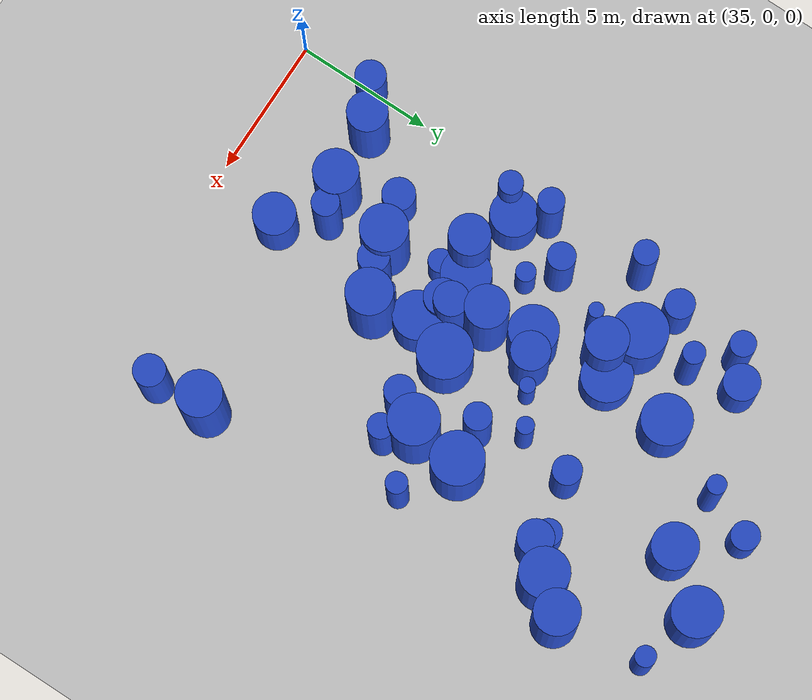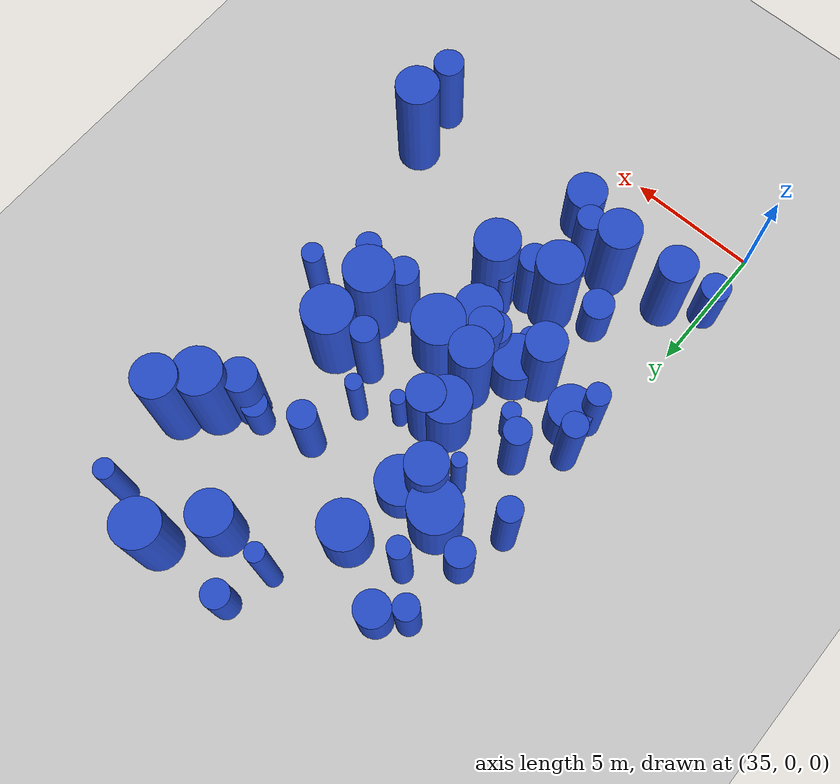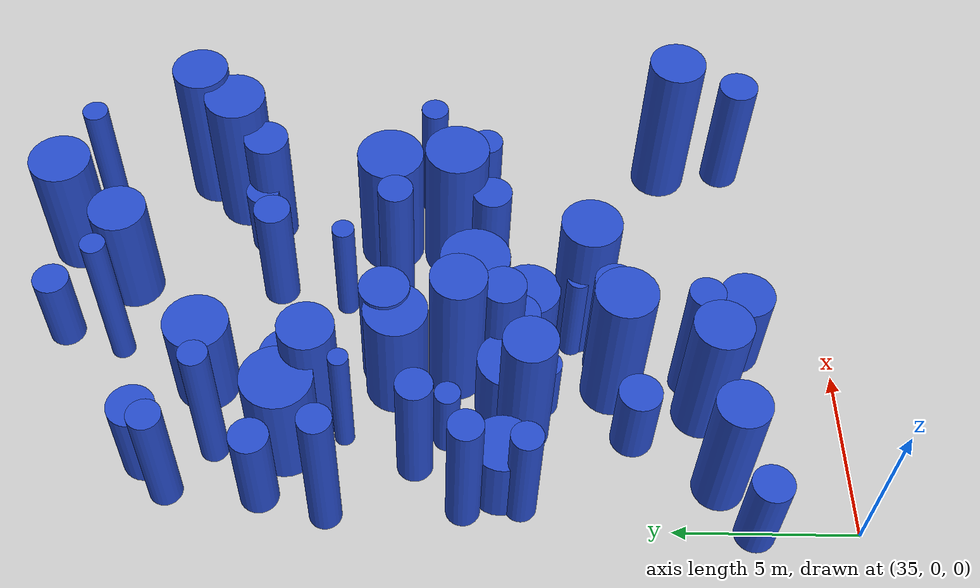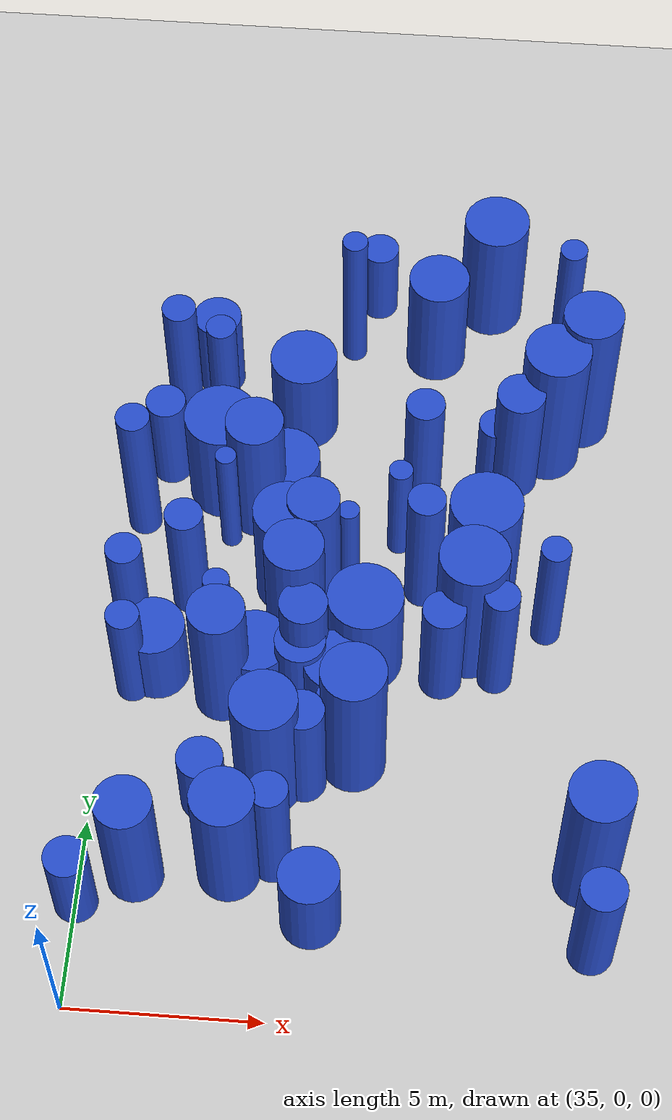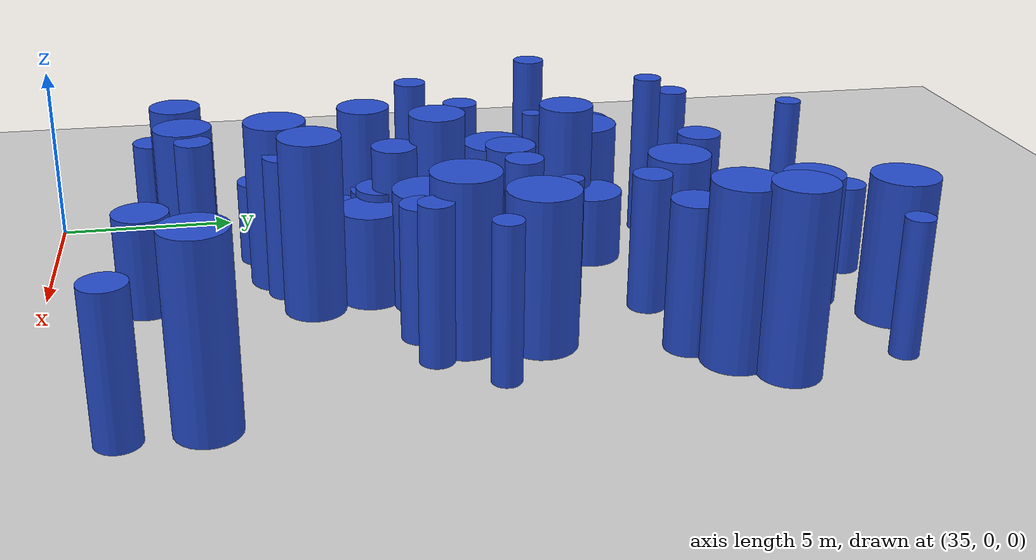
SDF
<sdf version="1.6">
 <world name="default">
  <model name="ground_plane">
   <static>1</static>
   <link name="link">
    <collision name="collision">
     <geometry><plane><normal>0 0 1</normal><size>100 100</size></plane></geometry>
     <surface><friction><ode><mu>100</mu><mu2>50</mu2></ode></friction></surface>
    </collision>
    <visual name="visual">
     <cast_shadows>0</cast_shadows>
     <geometry><plane><normal>0 0 1</normal><size>100 100</size></plane></geometry>
     <material>
      <script><uri>file://media/materials/scripts/gazebo.material</uri><name>Gazebo/Grey</name></script>
     </material>
    </visual>
   </link>
  </model>
  <model name="1">
   <static>0</static>
   <link name="link">
    <inertial>
     <mass>2</mass>
     <inertia><ixx>3.81588</ixx><ixy>0</ixy><ixz>0</ixz><iyy>3.81588</iyy><iyz>0</iyz><izz>0.158534</izz></inertia>
    </inertial>
    <collision name="collision">
     <geometry><cylinder><length>4.73494</length><radius>0.398164</radius></cylinder></geometry>
     <surface><contact><collide_without_contact>1</collide_without_contact></contact></surface>
    </collision>
    <visual name="visual">
     <geometry><cylinder><length>4.73494</length><radius>0.398164</radius></cylinder></geometry>
     <material>
      <script><uri>file://media/materials/scripts/gazebo.material</uri><name>Gazebo/Blue</name></script>
     </material>
    </visual>
    <gravity>0</gravity>
   </link>
   <pose>37.3386 17.4202 2.36747 0 -0 0</pose>
  </model>
  <model name="5">
   <static>0</static>
   <link name="link">
    <inertial>
     <mass>2</mass>
     <inertia><ixx>0.79305</ixx><ixy>0</ixy><ixz>0</ixz><iyy>0.79305</iyy><iyz>0</iyz><izz>0.186767</izz></inertia>
    </inertial>
    <collision name="collision">
     <geometry><cylinder><length>2.0489</length><radius>0.432165</radius></cylinder></geometry>
     <surface><contact><collide_without_contact>1</collide_without_contact></contact></surface>
    </collision>
    <visual name="visual">
     <geometry><cylinder><length>2.0489</length><radius>0.432165</radius></cylinder></geometry>
     <material>
      <script><uri>file://media/materials/scripts/gazebo.material</uri><name>Gazebo/Blue</name></script>
     </material>
    </visual>
    <gravity>0</gravity>
   </link>
   <pose>38.9921 8.31265 1.02445 0 -0 0</pose>
  </model>
  <model name="9">
   <static>0</static>
   <link name="link">
    <inertial>
     <mass>2</mass>
     <inertia><ixx>2.49906</ixx><ixy>0</ixy><ixz>0</ixz><iyy>2.49906</iyy><iyz>0</iyz><izz>0.95958</izz></inertia>
    </inertial>
    <collision name="collision">
     <geometry><cylinder><length>3.48075</length><radius>0.979581</radius></cylinder></geometry>
     <surface><contact><collide_without_contact>1</collide_without_contact></contact></surface>
    </collision>
    <visual name="visual">
     <geometry><cylinder><length>3.48075</length><radius>0.979581</radius></cylinder></geometry>
     <material>
      <script><uri>file://media/materials/scripts/gazebo.material</uri><name>Gazebo/Blue</name></script>
     </material>
    </visual>
    <gravity>0</gravity>
   </link>
   <pose>37.4825 15.4558 1.74037 0 -0 0</pose>
  </model>
  <model name="10">
   <static>0</static>
   <link name="link">
    <inertial>
     <mass>2</mass>
     <inertia><ixx>2.47867</ixx><ixy>0</ixy><ixz>0</ixz><iyy>2.47867</iyy><iyz>0</iyz><izz>0.684649</izz></inertia>
    </inertial>
    <collision name="collision">
     <geometry><cylinder><length>3.58024</length><radius>0.827435</radius></cylinder></geometry>
     <surface><contact><collide_without_contact>1</collide_without_contact></contact></surface>
    </collision>
    <visual name="visual">
     <geometry><cylinder><length>3.58024</length><radius>0.827435</radius></cylinder></geometry>
     <material>
      <script><uri>file://media/materials/scripts/gazebo.material</uri><name>Gazebo/Blue</name></script>
     </material>
    </visual>
    <gravity>0</gravity>
   </link>
   <pose>43.0104 20.4105 1.79012 0 -0 0</pose>
  </model>
  <model name="16">
   <static>0</static>
   <link name="link">
    <inertial>
     <mass>2</mass>
     <inertia><ixx>1.52106</ixx><ixy>0</ixy><ixz>0</ixz><iyy>1.52106</iyy><iyz>0</iyz><izz>0.42879</izz></inertia>
    </inertial>
    <collision name="collision">
     <geometry><cylinder><length>2.8</length><radius>0.65482</radius></cylinder></geometry>
     <surface><contact><collide_without_contact>1</collide_without_contact></contact></surface>
    </collision>
    <visual name="visual">
     <geometry><cylinder><length>2.8</length><radius>0.65482</radius></cylinder></geometry>
     <material>
      <script><uri>file://media/materials/scripts/gazebo.material</uri><name>Gazebo/Blue</name></script>
     </material>
    </visual>
    <gravity>0</gravity>
   </link>
   <pose>36.9714 19.2595 1.4 0 -0 0</pose>
  </model>
  <model name="21">
   <static>0</static>
   <link name="link">
    <inertial>
     <mass>2</mass>
     <inertia><ixx>3.48031</ixx><ixy>0</ixy><ixz>0</ixz><iyy>3.48031</iyy><iyz>0</iyz><izz>0.247758</izz></inertia>
    </inertial>
    <collision name="collision">
     <geometry><cylinder><length>4.4876</length><radius>0.497753</radius></cylinder></geometry>
     <surface><contact><collide_without_contact>1</collide_without_contact></contact></surface>
    </collision>
    <visual name="visual">
     <geometry><cylinder><length>4.4876</length><radius>0.497753</radius></cylinder></geometry>
     <material>
      <script><uri>file://media/materials/scripts/gazebo.material</uri><name>Gazebo/Blue</name></script>
     </material>
    </visual>
    <gravity>0</gravity>
   </link>
   <pose>43.0951 12.5325 2.2438 0 -0 0</pose>
  </model>
  <model name="23">
   <static>0</static>
   <link name="link">
    <inertial>
     <mass>2</mass>
     <inertia><ixx>3.02897</ixx><ixy>0</ixy><ixz>0</ixz><iyy>3.02897</iyy><iyz>0</iyz><izz>0.799249</izz></inertia>
    </inertial>
    <collision name="collision">
     <geometry><cylinder><length>3.97191</length><radius>0.894007</radius></cylinder></geometry>
     <surface><contact><collide_without_contact>1</collide_without_contact></contact></surface>
    </collision>
    <visual name="visual">
     <geometry><cylinder><length>3.97191</length><radius>0.894007</radius></cylinder></geometry>
     <material>
      <script><uri>file://media/materials/scripts/gazebo.material</uri><name>Gazebo/Blue</name></script>
     </material>
    </visual>
    <gravity>0</gravity>
   </link>
   <pose>44.5026 22.2198 1.98596 0 -0 0</pose>
  </model>
  <model name="29">
   <static>0</static>
   <link name="link">
    <inertial>
     <mass>2</mass>
     <inertia><ixx>2.40213</ixx><ixy>0</ixy><ixz>0</ixz><iyy>2.40213</iyy><iyz>0</iyz><izz>0.316267</izz></inertia>
    </inertial>
    <collision name="collision">
     <geometry><cylinder><length>3.66933</length><radius>0.562376</radius></cylinder></geometry>
     <surface><contact><collide_without_contact>1</collide_without_contact></contact></surface>
    </collision>
    <visual name="visual">
     <geometry><cylinder><length>3.66933</length><radius>0.562376</radius></cylinder></geometry>
     <material>
      <script><uri>file://media/materials/scripts/gazebo.material</uri><name>Gazebo/Blue</name></script>
     </material>
    </visual>
    <gravity>0</gravity>
   </link>
   <pose>43.713 9.80193 1.83467 0 -0 0</pose>
  </model>
  <model name="33">
   <static>0</static>
   <link name="link">
    <inertial>
     <mass>2</mass>
     <inertia><ixx>2.44196</ixx><ixy>0</ixy><ixz>0</ixz><iyy>2.44196</iyy><iyz>0</iyz><izz>0.187757</izz></inertia>
    </inertial>
    <collision name="collision">
     <geometry><cylinder><length>3.75347</length><radius>0.43331</radius></cylinder></geometry>
     <surface><contact><collide_without_contact>1</collide_without_contact></contact></surface>
    </collision>
    <visual name="visual">
     <geometry><cylinder><length>3.75347</length><radius>0.43331</radius></cylinder></geometry>
     <material>
      <script><uri>file://media/materials/scripts/gazebo.material</uri><name>Gazebo/Blue</name></script>
     </material>
    </visual>
    <gravity>0</gravity>
   </link>
   <pose>35.6788 9.00993 1.87673 0 -0 0</pose>
  </model>
  <model name="34">
   <static>0</static>
   <link name="link">
    <inertial>
     <mass>2</mass>
     <inertia><ixx>1.29833</ixx><ixy>0</ixy><ixz>0</ixz><iyy>1.29833</iyy><iyz>0</iyz><izz>0.714199</izz></inertia>
    </inertial>
    <collision name="collision">
     <geometry><cylinder><length>2.37642</length><radius>0.845103</radius></cylinder></geometry>
     <surface><contact><collide_without_contact>1</collide_without_contact></contact></surface>
    </collision>
    <visual name="visual">
     <geometry><cylinder><length>2.37642</length><radius>0.845103</radius></cylinder></geometry>
     <material>
      <script><uri>file://media/materials/scripts/gazebo.material</uri><name>Gazebo/Blue</name></script>
     </material>
    </visual>
    <gravity>0</gravity>
   </link>
   <pose>36.2733 9.54869 1.18821 0 -0 0</pose>
  </model>
  <model name="48">
   <static>0</static>
   <link name="link">
    <inertial>
     <mass>2</mass>
     <inertia><ixx>3.26153</ixx><ixy>0</ixy><ixz>0</ixz><iyy>3.26153</iyy><iyz>0</iyz><izz>0.520826</izz></inertia>
    </inertial>
    <collision name="collision">
     <geometry><cylinder><length>4.24343</length><radius>0.721682</radius></cylinder></geometry>
     <surface><contact><collide_without_contact>1</collide_without_contact></contact></surface>
    </collision>
    <visual name="visual">
     <geometry><cylinder><length>4.24343</length><radius>0.721682</radius></cylinder></geometry>
     <material>
      <script><uri>file://media/materials/scripts/gazebo.material</uri><name>Gazebo/Blue</name></script>
     </material>
    </visual>
    <gravity>0</gravity>
   </link>
   <pose>36.3989 3.62936 2.12171 0 -0 0</pose>
  </model>
  <model name="51">
   <static>0</static>
   <link name="link">
    <inertial>
     <mass>2</mass>
     <inertia><ixx>2.86155</ixx><ixy>0</ixy><ixz>0</ixz><iyy>2.86155</iyy><iyz>0</iyz><izz>0.388059</izz></inertia>
    </inertial>
    <collision name="collision">
     <geometry><cylinder><length>4.00064</length><radius>0.622944</radius></cylinder></geometry>
     <surface><contact><collide_without_contact>1</collide_without_contact></contact></surface>
    </collision>
    <visual name="visual">
     <geometry><cylinder><length>4.00064</length><radius>0.622944</radius></cylinder></geometry>
     <material>
      <script><uri>file://media/materials/scripts/gazebo.material</uri><name>Gazebo/Blue</name></script>
     </material>
    </visual>
    <gravity>0</gravity>
   </link>
   <pose>40.1805 9.54253 2.00032 0 -0 0</pose>
  </model>
  <model name="66">
   <static>0</static>
   <link name="link">
    <inertial>
     <mass>2</mass>
     <inertia>
      <ixx>2.20663</ixx>
      <ixy>0</ixy>
      <ixz>0</ixz>
      <iyy>2.20663</iyy>
      <iyz>0</iyz>
      <izz>0.0996871</izz>
     </inertia>
    </inertial>
    <collision name="collision">
     <geometry><cylinder><length>3.59732</length><radius>0.315733</radius></cylinder></geometry>
     <surface><contact><collide_without_contact>1</collide_without_contact></contact></surface>
    </collision>
    <visual name="visual">
     <geometry><cylinder><length>3.59732</length><radius>0.315733</radius></cylinder></geometry>
     <material>
      <script><uri>file://media/materials/scripts/gazebo.material</uri><name>Gazebo/Blue</name></script>
     </material>
    </visual>
    <gravity>0</gravity>
   </link>
   <pose>42.3597 13.9829 1.79866 0 -0 0</pose>
  </model>
  <model name="101">
   <static>0</static>
   <link name="link">
    <inertial>
     <mass>2</mass>
     <inertia><ixx>2.52382</ixx><ixy>0</ixy><ixz>0</ixz><iyy>2.52382</iyy><iyz>0</iyz><izz>0.271897</izz></inertia>
    </inertial>
    <collision name="collision">
     <geometry><cylinder><length>3.78514</length><radius>0.521438</radius></cylinder></geometry>
     <surface><contact><collide_without_contact>1</collide_without_contact></contact></surface>
    </collision>
    <visual name="visual">
     <geometry><cylinder><length>3.78514</length><radius>0.521438</radius></cylinder></geometry>
     <material>
      <script><uri>file://media/materials/scripts/gazebo.material</uri><name>Gazebo/Blue</name></script>
     </material>
    </visual>
    <gravity>0</gravity>
   </link>
   <pose>42.8813 15.9971 1.89257 0 -0 0</pose>
  </model>
  <model name="103">
   <static>0</static>
   <link name="link">
    <inertial>
     <mass>2</mass>
     <inertia><ixx>2.72213</ixx><ixy>0</ixy><ixz>0</ixz><iyy>2.72213</iyy><iyz>0</iyz><izz>0.486014</izz></inertia>
    </inertial>
    <collision name="collision">
     <geometry><cylinder><length>3.85678</length><radius>0.697147</radius></cylinder></geometry>
     <surface><contact><collide_without_contact>1</collide_without_contact></contact></surface>
    </collision>
    <visual name="visual">
     <geometry><cylinder><length>3.85678</length><radius>0.697147</radius></cylinder></geometry>
     <material>
      <script><uri>file://media/materials/scripts/gazebo.material</uri><name>Gazebo/Blue</name></script>
     </material>
    </visual>
    <gravity>0</gravity>
   </link>
   <pose>40.1712 12.7482 1.92839 0 -0 0</pose>
  </model>
  <model name="106">
   <static>0</static>
   <link name="link">
    <inertial>
     <mass>2</mass>
     <inertia><ixx>1.98531</ixx><ixy>0</ixy><ixz>0</ixz><iyy>1.98531</iyy><iyz>0</iyz><izz>0.825751</izz></inertia>
    </inertial>
    <collision name="collision">
     <geometry><cylinder><length>3.07158</length><radius>0.908708</radius></cylinder></geometry>
     <surface><contact><collide_without_contact>1</collide_without_contact></contact></surface>
    </collision>
    <visual name="visual">
     <geometry><cylinder><length>3.07158</length><radius>0.908708</radius></cylinder></geometry>
     <material>
      <script><uri>file://media/materials/scripts/gazebo.material</uri><name>Gazebo/Blue</name></script>
     </material>
    </visual>
    <gravity>0</gravity>
   </link>
   <pose>39.4858 17.8355 1.53579 0 -0 0</pose>
  </model>
  <model name="107">
   <static>0</static>
   <link name="link">
    <inertial>
     <mass>2</mass>
     <inertia><ixx>2.6751</ixx><ixy>0</ixy><ixz>0</ixz><iyy>2.6751</iyy><iyz>0</iyz><izz>0.0768651</izz></inertia>
    </inertial>
    <collision name="collision">
     <geometry><cylinder><length>3.97744</length><radius>0.277246</radius></cylinder></geometry>
     <surface><contact><collide_without_contact>1</collide_without_contact></contact></surface>
    </collision>
    <visual name="visual">
     <geometry><cylinder><length>3.97744</length><radius>0.277246</radius></cylinder></geometry>
     <material>
      <script><uri>file://media/materials/scripts/gazebo.material</uri><name>Gazebo/Blue</name></script>
     </material>
    </visual>
    <gravity>0</gravity>
   </link>
   <pose>37.7998 13.8436 1.98872 0 -0 0</pose>
  </model>
  <model name="113">
   <static>0</static>
   <link name="link">
    <inertial>
     <mass>2</mass>
     <inertia><ixx>1.78792</ixx><ixy>0</ixy><ixz>0</ixz><iyy>1.78792</iyy><iyz>0</iyz><izz>0.287967</izz></inertia>
    </inertial>
    <collision name="collision">
     <geometry><cylinder><length>3.14064</length><radius>0.536625</radius></cylinder></geometry>
     <surface><contact><collide_without_contact>1</collide_without_contact></contact></surface>
    </collision>
    <visual name="visual">
     <geometry><cylinder><length>3.14064</length><radius>0.536625</radius></cylinder></geometry>
     <material>
      <script><uri>file://media/materials/scripts/gazebo.material</uri><name>Gazebo/Blue</name></script>
     </material>
    </visual>
    <gravity>0</gravity>
   </link>
   <pose>35.9208 16.0488 1.57032 0 -0 0</pose>
  </model>
  <model name="127">
   <static>0</static>
   <link name="link">
    <inertial>
     <mass>2</mass>
     <inertia><ixx>3.41432</ixx><ixy>0</ixy><ixz>0</ixz><iyy>3.41432</iyy><iyz>0</iyz><izz>0.901291</izz></inertia>
    </inertial>
    <collision name="collision">
     <geometry><cylinder><length>4.21688</length><radius>0.949363</radius></cylinder></geometry>
     <surface><contact><collide_without_contact>1</collide_without_contact></contact></surface>
    </collision>
    <visual name="visual">
     <geometry><cylinder><length>4.21688</length><radius>0.949363</radius></cylinder></geometry>
     <material>
      <script><uri>file://media/materials/scripts/gazebo.material</uri><name>Gazebo/Blue</name></script>
     </material>
    </visual>
    <gravity>0</gravity>
   </link>
   <pose>44.6225 12.7235 2.10844 0 -0 0</pose>
  </model>
  <model name="140">
   <static>0</static>
   <link name="link">
    <inertial>
     <mass>2</mass>
     <inertia><ixx>1.40632</ixx><ixy>0</ixy><ixz>0</ixz><iyy>1.40632</iyy><iyz>0</iyz><izz>0.308108</izz></inertia>
    </inertial>
    <collision name="collision">
     <geometry><cylinder><length>2.7411</length><radius>0.555075</radius></cylinder></geometry>
     <surface><contact><collide_without_contact>1</collide_without_contact></contact></surface>
    </collision>
    <visual name="visual">
     <geometry><cylinder><length>2.7411</length><radius>0.555075</radius></cylinder></geometry>
     <material>
      <script><uri>file://media/materials/scripts/gazebo.material</uri><name>Gazebo/Blue</name></script>
     </material>
    </visual>
    <gravity>0</gravity>
   </link>
   <pose>35.0094 2.803 1.37055 0 -0 0</pose>
  </model>
  <model name="186">
   <static>0</static>
   <link name="link">
    <inertial>
     <mass>2</mass>
     <inertia><ixx>2.93958</ixx><ixy>0</ixy><ixz>0</ixz><iyy>2.93958</iyy><iyz>0</iyz><izz>0.249669</izz></inertia>
    </inertial>
    <collision name="collision">
     <geometry><cylinder><length>4.10956</length><radius>0.499669</radius></cylinder></geometry>
     <surface><contact><collide_without_contact>1</collide_without_contact></contact></surface>
    </collision>
    <visual name="visual">
     <geometry><cylinder><length>4.10956</length><radius>0.499669</radius></cylinder></geometry>
     <material>
      <script><uri>file://media/materials/scripts/gazebo.material</uri><name>Gazebo/Blue</name></script>
     </material>
    </visual>
    <gravity>0</gravity>
   </link>
   <pose>36.9236 11.8681 2.05478 0 -0 0</pose>
  </model>
  <model name="187">
   <static>0</static>
   <link name="link">
    <inertial>
     <mass>2</mass>
     <inertia><ixx>1.57366</ixx><ixy>0</ixy><ixz>0</ixz><iyy>1.57366</iyy><iyz>0</iyz><izz>0.581682</izz></inertia>
    </inertial>
    <collision name="collision">
     <geometry><cylinder><length>2.77433</length><radius>0.76268</radius></cylinder></geometry>
     <surface><contact><collide_without_contact>1</collide_without_contact></contact></surface>
    </collision>
    <visual name="visual">
     <geometry><cylinder><length>2.77433</length><radius>0.76268</radius></cylinder></geometry>
     <material>
      <script><uri>file://media/materials/scripts/gazebo.material</uri><name>Gazebo/Blue</name></script>
     </material>
    </visual>
    <gravity>0</gravity>
   </link>
   <pose>40.8757 2.74416 1.38717 0 -0 0</pose>
  </model>
  <model name="202">
   <static>0</static>
   <link name="link">
    <inertial>
     <mass>2</mass>
     <inertia><ixx>3.10138</ixx><ixy>0</ixy><ixz>0</ixz><iyy>3.10138</iyy><iyz>0</iyz><izz>0.209682</izz></inertia>
    </inertial>
    <collision name="collision">
     <geometry><cylinder><length>4.24019</length><radius>0.45791</radius></cylinder></geometry>
     <surface><contact><collide_without_contact>1</collide_without_contact></contact></surface>
    </collision>
    <visual name="visual">
     <geometry><cylinder><length>4.24019</length><radius>0.45791</radius></cylinder></geometry>
     <material>
      <script><uri>file://media/materials/scripts/gazebo.material</uri><name>Gazebo/Blue</name></script>
     </material>
    </visual>
    <gravity>0</gravity>
   </link>
   <pose>45.1348 9.97183 2.1201 0 -0 0</pose>
  </model>
  <model name="208">
   <static>0</static>
   <link name="link">
    <inertial>
     <mass>2</mass>
     <inertia><ixx>2.88239</ixx><ixy>0</ixy><ixz>0</ixz><iyy>2.88239</iyy><iyz>0</iyz><izz>0.418174</izz></inertia>
    </inertial>
    <collision name="collision">
     <geometry><cylinder><length>4.00498</length><radius>0.646664</radius></cylinder></geometry>
     <surface><contact><collide_without_contact>1</collide_without_contact></contact></surface>
    </collision>
    <visual name="visual">
     <geometry><cylinder><length>4.00498</length><radius>0.646664</radius></cylinder></geometry>
     <material>
      <script><uri>file://media/materials/scripts/gazebo.material</uri><name>Gazebo/Blue</name></script>
     </material>
    </visual>
    <gravity>0</gravity>
   </link>
   <pose>45.3882 16.3678 2.00249 0 -0 0</pose>
  </model>
  <model name="212">
   <static>0</static>
   <link name="link">
    <inertial>
     <mass>2</mass>
     <inertia><ixx>1.12089</ixx><ixy>0</ixy><ixz>0</ixz><iyy>1.12089</iyy><iyz>0</iyz><izz>0.355767</izz></inertia>
    </inertial>
    <collision name="collision">
     <geometry><cylinder><length>2.37867</length><radius>0.596462</radius></cylinder></geometry>
     <surface><contact><collide_without_contact>1</collide_without_contact></contact></surface>
    </collision>
    <visual name="visual">
     <geometry><cylinder><length>2.37867</length><radius>0.596462</radius></cylinder></geometry>
     <material>
      <script><uri>file://media/materials/scripts/gazebo.material</uri><name>Gazebo/Blue</name></script>
     </material>
    </visual>
    <gravity>0</gravity>
   </link>
   <pose>37.8915 5.87249 1.18933 0 -0 0</pose>
  </model>
  <model name="223">
   <static>0</static>
   <link name="link">
    <inertial>
     <mass>2</mass>
     <inertia><ixx>1.03772</ixx><ixy>0</ixy><ixz>0</ixz><iyy>1.03772</iyy><iyz>0</iyz><izz>0.128133</izz></inertia>
    </inertial>
    <collision name="collision">
     <geometry><cylinder><length>2.417</length><radius>0.357956</radius></cylinder></geometry>
     <surface><contact><collide_without_contact>1</collide_without_contact></contact></surface>
    </collision>
    <visual name="visual">
     <geometry><cylinder><length>2.417</length><radius>0.357956</radius></cylinder></geometry>
     <material>
      <script><uri>file://media/materials/scripts/gazebo.material</uri><name>Gazebo/Blue</name></script>
     </material>
    </visual>
    <gravity>0</gravity>
   </link>
   <pose>37.7609 11.0113 1.2085 0 -0 0</pose>
  </model>
  <model name="243">
   <static>0</static>
   <link name="link">
    <inertial>
     <mass>2</mass>
     <inertia><ixx>1.10068</ixx><ixy>0</ixy><ixz>0</ixz><iyy>1.10068</iyy><iyz>0</iyz><izz>0.856696</izz></inertia>
    </inertial>
    <collision name="collision">
     <geometry><cylinder><length>2.00848</length><radius>0.925579</radius></cylinder></geometry>
     <surface><contact><collide_without_contact>1</collide_without_contact></contact></surface>
    </collision>
    <visual name="visual">
     <geometry><cylinder><length>2.00848</length><radius>0.925579</radius></cylinder></geometry>
     <material>
      <script><uri>file://media/materials/scripts/gazebo.material</uri><name>Gazebo/Blue</name></script>
     </material>
    </visual>
    <gravity>0</gravity>
   </link>
   <pose>39.1964 15.2826 1.00424 0 -0 0</pose>
  </model>
  <model name="245">
   <static>0</static>
   <link name="link">
    <inertial>
     <mass>2</mass>
     <inertia><ixx>4.31321</ixx><ixy>0</ixy><ixz>0</ixz><iyy>4.31321</iyy><iyz>0</iyz><izz>0.691048</izz></inertia>
    </inertial>
    <collision name="collision">
     <geometry><cylinder><length>4.87915</length><radius>0.831293</radius></cylinder></geometry>
     <surface><contact><collide_without_contact>1</collide_without_contact></contact></surface>
    </collision>
    <visual name="visual">
     <geometry><cylinder><length>4.87915</length><radius>0.831293</radius></cylinder></geometry>
     <material>
      <script><uri>file://media/materials/scripts/gazebo.material</uri><name>Gazebo/Blue</name></script>
     </material>
    </visual>
    <gravity>0</gravity>
   </link>
   <pose>41.6182 7.19636 2.43957 0 -0 0</pose>
  </model>
  <model name="254">
   <static>0</static>
   <link name="link">
    <inertial>
     <mass>2</mass>
     <inertia>
      <ixx>1.57214</ixx>
      <ixy>0</ixy>
      <ixz>0</ixz>
      <iyy>1.57214</iyy>
      <iyz>0</iyz>
      <izz>0.0828574</izz>
     </inertia>
    </inertial>
    <collision name="collision">
     <geometry><cylinder><length>3.03056</length><radius>0.28785</radius></cylinder></geometry>
     <surface><contact><collide_without_contact>1</collide_without_contact></contact></surface>
    </collision>
    <visual name="visual">
     <geometry><cylinder><length>3.03056</length><radius>0.28785</radius></cylinder></geometry>
     <material>
      <script><uri>file://media/materials/scripts/gazebo.material</uri><name>Gazebo/Blue</name></script>
     </material>
    </visual>
    <gravity>0</gravity>
   </link>
   <pose>39.2303 6.33871 1.51528 0 -0 0</pose>
  </model>
  <model name="256">
   <static>0</static>
   <link name="link">
    <inertial>
     <mass>2</mass>
     <inertia><ixx>1.21052</ixx><ixy>0</ixy><ixz>0</ixz><iyy>1.21052</iyy><iyz>0</iyz><izz>0.269813</izz></inertia>
    </inertial>
    <collision name="collision">
     <geometry><cylinder><length>2.54041</length><radius>0.519435</radius></cylinder></geometry>
     <surface><contact><collide_without_contact>1</collide_without_contact></contact></surface>
    </collision>
    <visual name="visual">
     <geometry><cylinder><length>2.54041</length><radius>0.519435</radius></cylinder></geometry>
     <material>
      <script><uri>file://media/materials/scripts/gazebo.material</uri><name>Gazebo/Blue</name></script>
     </material>
    </visual>
    <gravity>0</gravity>
   </link>
   <pose>41.2741 22.1936 1.2702 0 -0 0</pose>
  </model>
  <model name="259">
   <static>0</static>
   <link name="link">
    <inertial>
     <mass>2</mass>
     <inertia><ixx>1.30967</ixx><ixy>0</ixy><ixz>0</ixz><iyy>1.30967</iyy><iyz>0</iyz><izz>0.813274</izz></inertia>
    </inertial>
    <collision name="collision">
     <geometry><cylinder><length>2.3277</length><radius>0.901817</radius></cylinder></geometry>
     <surface><contact><collide_without_contact>1</collide_without_contact></contact></surface>
    </collision>
    <visual name="visual">
     <geometry><cylinder><length>2.3277</length><radius>0.901817</radius></cylinder></geometry>
     <material>
      <script><uri>file://media/materials/scripts/gazebo.material</uri><name>Gazebo/Blue</name></script>
     </material>
    </visual>
    <gravity>0</gravity>
   </link>
   <pose>38.9198 9.32892 1.16385 0 -0 0</pose>
  </model>
  <model name="269">
   <static>0</static>
   <link name="link">
    <inertial>
     <mass>2</mass>
     <inertia><ixx>4.09694</ixx><ixy>0</ixy><ixz>0</ixz><iyy>4.09694</iyy><iyz>0</iyz><izz>0.822111</izz></inertia>
    </inertial>
    <collision name="collision">
     <geometry><cylinder><length>4.70269</length><radius>0.906703</radius></cylinder></geometry>
     <surface><contact><collide_without_contact>1</collide_without_contact></contact></surface>
    </collision>
    <visual name="visual">
     <geometry><cylinder><length>4.70269</length><radius>0.906703</radius></cylinder></geometry>
     <material>
      <script><uri>file://media/materials/scripts/gazebo.material</uri><name>Gazebo/Blue</name></script>
     </material>
    </visual>
    <gravity>0</gravity>
   </link>
   <pose>44.3846 10.8215 2.35134 0 -0 0</pose>
  </model>
  <model name="275">
   <static>0</static>
   <link name="link">
    <inertial>
     <mass>2</mass>
     <inertia><ixx>2.71759</ixx><ixy>0</ixy><ixz>0</ixz><iyy>2.71759</iyy><iyz>0</iyz><izz>0.330228</izz></inertia>
    </inertial>
    <collision name="collision">
     <geometry><cylinder><length>3.91342</length><radius>0.574655</radius></cylinder></geometry>
     <surface><contact><collide_without_contact>1</collide_without_contact></contact></surface>
    </collision>
    <visual name="visual">
     <geometry><cylinder><length>3.91342</length><radius>0.574655</radius></cylinder></geometry>
     <material>
      <script><uri>file://media/materials/scripts/gazebo.material</uri><name>Gazebo/Blue</name></script>
     </material>
    </visual>
    <gravity>0</gravity>
   </link>
   <pose>47.8179 2.39416 1.95671 0 -0 0</pose>
  </model>
  <model name="277">
   <static>0</static>
   <link name="link">
    <inertial>
     <mass>2</mass>
     <inertia><ixx>3.34082</ixx><ixy>0</ixy><ixz>0</ixz><iyy>3.34082</iyy><iyz>0</iyz><izz>0.219298</izz></inertia>
    </inertial>
    <collision name="collision">
     <geometry><cylinder><length>4.40307</length><radius>0.468293</radius></cylinder></geometry>
     <surface><contact><collide_without_contact>1</collide_without_contact></contact></surface>
    </collision>
    <visual name="visual">
     <geometry><cylinder><length>4.40307</length><radius>0.468293</radius></cylinder></geometry>
     <material>
      <script><uri>file://media/materials/scripts/gazebo.material</uri><name>Gazebo/Blue</name></script>
     </material>
    </visual>
    <gravity>0</gravity>
   </link>
   <pose>35.5663 10.5573 2.20154 0 -0 0</pose>
  </model>
  <model name="281">
   <static>0</static>
   <link name="link">
    <inertial>
     <mass>2</mass>
     <inertia><ixx>1.55093</ixx><ixy>0</ixy><ixz>0</ixz><iyy>1.55093</iyy><iyz>0</iyz><izz>0.436646</izz></inertia>
    </inertial>
    <collision name="collision">
     <geometry><cylinder><length>2.82765</length><radius>0.660792</radius></cylinder></geometry>
     <surface><contact><collide_without_contact>1</collide_without_contact></contact></surface>
    </collision>
    <visual name="visual">
     <geometry><cylinder><length>2.82765</length><radius>0.660792</radius></cylinder></geometry>
     <material>
      <script><uri>file://media/materials/scripts/gazebo.material</uri><name>Gazebo/Blue</name></script>
     </material>
    </visual>
    <gravity>0</gravity>
   </link>
   <pose>40.1166 9.13929 1.41383 0 -0 0</pose>
  </model>
  <model name="340">
   <static>0</static>
   <link name="link">
    <inertial>
     <mass>2</mass>
     <inertia><ixx>2.64201</ixx><ixy>0</ixy><ixz>0</ixz><iyy>2.64201</iyy><iyz>0</iyz><izz>0.212555</izz></inertia>
    </inertial>
    <collision name="collision">
     <geometry><cylinder><length>3.90057</length><radius>0.461037</radius></cylinder></geometry>
     <surface><contact><collide_without_contact>1</collide_without_contact></contact></surface>
    </collision>
    <visual name="visual">
     <geometry><cylinder><length>3.90057</length><radius>0.461037</radius></cylinder></geometry>
     <material>
      <script><uri>file://media/materials/scripts/gazebo.material</uri><name>Gazebo/Blue</name></script>
     </material>
    </visual>
    <gravity>0</gravity>
   </link>
   <pose>36.0305 18.602 1.95028 0 -0 0</pose>
  </model>
  <model name="369">
   <static>0</static>
   <link name="link">
    <inertial>
     <mass>2</mass>
     <inertia><ixx>3.18684</ixx><ixy>0</ixy><ixz>0</ixz><iyy>3.18684</iyy><iyz>0</iyz><izz>0.244602</izz></inertia>
    </inertial>
    <collision name="collision">
     <geometry><cylinder><length>4.28804</length><radius>0.494573</radius></cylinder></geometry>
     <surface><contact><collide_without_contact>1</collide_without_contact></contact></surface>
    </collision>
    <visual name="visual">
     <geometry><cylinder><length>4.28804</length><radius>0.494573</radius></cylinder></geometry>
     <material>
      <script><uri>file://media/materials/scripts/gazebo.material</uri><name>Gazebo/Blue</name></script>
     </material>
    </visual>
    <gravity>0</gravity>
   </link>
   <pose>39.8047 4.19612 2.14402 0 -0 0</pose>
  </model>
  <model name="371">
   <static>0</static>
   <link name="link">
    <inertial>
     <mass>2</mass>
     <inertia><ixx>4.49671</ixx><ixy>0</ixy><ixz>0</ixz><iyy>4.49671</iyy><iyz>0</iyz><izz>0.667664</izz></inertia>
    </inertial>
    <collision name="collision">
     <geometry><cylinder><length>4.99772</length><radius>0.817107</radius></cylinder></geometry>
     <surface><contact><collide_without_contact>1</collide_without_contact></contact></surface>
    </collision>
    <visual name="visual">
     <geometry><cylinder><length>4.99772</length><radius>0.817107</radius></cylinder></geometry>
     <material>
      <script><uri>file://media/materials/scripts/gazebo.material</uri><name>Gazebo/Blue</name></script>
     </material>
    </visual>
    <gravity>0</gravity>
   </link>
   <pose>47.6482 4.37752 2.49886 0 -0 0</pose>
  </model>
  <model name="376">
   <static>0</static>
   <link name="link">
    <inertial>
     <mass>2</mass>
     <inertia><ixx>4.08471</ixx><ixy>0</ixy><ixz>0</ixz><iyy>4.08471</iyy><iyz>0</iyz><izz>0.201075</izz></inertia>
    </inertial>
    <collision name="collision">
     <geometry><cylinder><length>4.88928</length><radius>0.448414</radius></cylinder></geometry>
     <surface><contact><collide_without_contact>1</collide_without_contact></contact></surface>
    </collision>
    <visual name="visual">
     <geometry><cylinder><length>4.88928</length><radius>0.448414</radius></cylinder></geometry>
     <material>
      <script><uri>file://media/materials/scripts/gazebo.material</uri><name>Gazebo/Blue</name></script>
     </material>
    </visual>
    <gravity>0</gravity>
   </link>
   <pose>35.3855 14.2276 2.44464 0 -0 0</pose>
  </model>
  <model name="378">
   <static>0</static>
   <link name="link">
    <inertial>
     <mass>2</mass>
     <inertia><ixx>3.49406</ixx><ixy>0</ixy><ixz>0</ixz><iyy>3.49406</iyy><iyz>0</iyz><izz>0.589634</izz></inertia>
    </inertial>
    <collision name="collision">
     <geometry><cylinder><length>4.38126</length><radius>0.767876</radius></cylinder></geometry>
     <surface><contact><collide_without_contact>1</collide_without_contact></contact></surface>
    </collision>
    <visual name="visual">
     <geometry><cylinder><length>4.38126</length><radius>0.767876</radius></cylinder></geometry>
     <material>
      <script><uri>file://media/materials/scripts/gazebo.material</uri><name>Gazebo/Blue</name></script>
     </material>
    </visual>
    <gravity>0</gravity>
   </link>
   <pose>38.4778 14.7015 2.19063 0 -0 0</pose>
  </model>
  <model name="391">
   <static>0</static>
   <link name="link">
    <inertial>
     <mass>2</mass>
     <inertia><ixx>2.72122</ixx><ixy>0</ixy><ixz>0</ixz><iyy>2.72122</iyy><iyz>0</iyz><izz>0.779548</izz></inertia>
    </inertial>
    <collision name="collision">
     <geometry><cylinder><length>3.74015</length><radius>0.88292</radius></cylinder></geometry>
     <surface><contact><collide_without_contact>1</collide_without_contact></contact></surface>
    </collision>
    <visual name="visual">
     <geometry><cylinder><length>3.74015</length><radius>0.88292</radius></cylinder></geometry>
     <material>
      <script><uri>file://media/materials/scripts/gazebo.material</uri><name>Gazebo/Blue</name></script>
     </material>
    </visual>
    <gravity>0</gravity>
   </link>
   <pose>39.5035 12.4333 1.87007 0 -0 0</pose>
  </model>
  <model name="393">
   <static>0</static>
   <link name="link">
    <inertial>
     <mass>2</mass>
     <inertia><ixx>2.7816</ixx><ixy>0</ixy><ixz>0</ixz><iyy>2.7816</iyy><iyz>0</iyz><izz>0.314071</izz></inertia>
    </inertial>
    <collision name="collision">
     <geometry><cylinder><length>3.9683</length><radius>0.560421</radius></cylinder></geometry>
     <surface><contact><collide_without_contact>1</collide_without_contact></contact></surface>
    </collision>
    <visual name="visual">
     <geometry><cylinder><length>3.9683</length><radius>0.560421</radius></cylinder></geometry>
     <material>
      <script><uri>file://media/materials/scripts/gazebo.material</uri><name>Gazebo/Blue</name></script>
     </material>
    </visual>
    <gravity>0</gravity>
   </link>
   <pose>40.4123 6.54745 1.98415 0 -0 0</pose>
  </model>
  <model name="407">
   <static>0</static>
   <link name="link">
    <inertial>
     <mass>2</mass>
     <inertia><ixx>2.28469</ixx><ixy>0</ixy><ixz>0</ixz><iyy>2.28469</iyy><iyz>0</iyz><izz>0.976443</izz></inertia>
    </inertial>
    <collision name="collision">
     <geometry><cylinder><length>3.28311</length><radius>0.988151</radius></cylinder></geometry>
     <surface><contact><collide_without_contact>1</collide_without_contact></contact></surface>
    </collision>
    <visual name="visual">
     <geometry><cylinder><length>3.28311</length><radius>0.988151</radius></cylinder></geometry>
     <material>
      <script><uri>file://media/materials/scripts/gazebo.material</uri><name>Gazebo/Blue</name></script>
     </material>
    </visual>
    <gravity>0</gravity>
   </link>
   <pose>41.6942 10.2844 1.64155 0 -0 0</pose>
  </model>
  <model name="413">
   <static>0</static>
   <link name="link">
    <inertial>
     <mass>2</mass>
     <inertia><ixx>4.07373</ixx><ixy>0</ixy><ixz>0</ixz><iyy>4.07373</iyy><iyz>0</iyz><izz>0.599863</izz></inertia>
    </inertial>
    <collision name="collision">
     <geometry><cylinder><length>4.75844</length><radius>0.774508</radius></cylinder></geometry>
     <surface><contact><collide_without_contact>1</collide_without_contact></contact></surface>
    </collision>
    <visual name="visual">
     <geometry><cylinder><length>4.75844</length><radius>0.774508</radius></cylinder></geometry>
     <material>
      <script><uri>file://media/materials/scripts/gazebo.material</uri><name>Gazebo/Blue</name></script>
     </material>
    </visual>
    <gravity>0</gravity>
   </link>
   <pose>39.8523 10.7631 2.37922 0 -0 0</pose>
  </model>
  <model name="415">
   <static>0</static>
   <link name="link">
    <inertial>
     <mass>2</mass>
     <inertia><ixx>3.6422</ixx><ixy>0</ixy><ixz>0</ixz><iyy>3.6422</iyy><iyz>0</iyz><izz>0.544372</izz></inertia>
    </inertial>
    <collision name="collision">
     <geometry><cylinder><length>4.49667</length><radius>0.737816</radius></cylinder></geometry>
     <surface><contact><collide_without_contact>1</collide_without_contact></contact></surface>
    </collision>
    <visual name="visual">
     <geometry><cylinder><length>4.49667</length><radius>0.737816</radius></cylinder></geometry>
     <material>
      <script><uri>file://media/materials/scripts/gazebo.material</uri><name>Gazebo/Blue</name></script>
     </material>
    </visual>
    <gravity>0</gravity>
   </link>
   <pose>38.0775 8.90455 2.24834 0 -0 0</pose>
  </model>
  <model name="416">
   <static>0</static>
   <link name="link">
    <inertial>
     <mass>2</mass>
     <inertia><ixx>1.79273</ixx><ixy>0</ixy><ixz>0</ixz><iyy>1.79273</iyy><iyz>0</iyz><izz>0.107747</izz></inertia>
    </inertial>
    <collision name="collision">
     <geometry><cylinder><length>3.23003</length><radius>0.328248</radius></cylinder></geometry>
     <surface><contact><collide_without_contact>1</collide_without_contact></contact></surface>
    </collision>
    <visual name="visual">
     <geometry><cylinder><length>3.23003</length><radius>0.328248</radius></cylinder></geometry>
     <material>
      <script><uri>file://media/materials/scripts/gazebo.material</uri><name>Gazebo/Blue</name></script>
     </material>
    </visual>
    <gravity>0</gravity>
   </link>
   <pose>41.0058 7.43382 1.61502 0 -0 0</pose>
  </model>
  <model name="419">
   <static>0</static>
   <link name="link">
    <inertial>
     <mass>2</mass>
     <inertia><ixx>1.00438</ixx><ixy>0</ixy><ixz>0</ixz><iyy>1.00438</iyy><iyz>0</iyz><izz>0.238772</izz></inertia>
    </inertial>
    <collision name="collision">
     <geometry><cylinder><length>2.30434</length><radius>0.488643</radius></cylinder></geometry>
     <surface><contact><collide_without_contact>1</collide_without_contact></contact></surface>
    </collision>
    <visual name="visual">
     <geometry><cylinder><length>2.30434</length><radius>0.488643</radius></cylinder></geometry>
     <material>
      <script><uri>file://media/materials/scripts/gazebo.material</uri><name>Gazebo/Blue</name></script>
     </material>
    </visual>
    <gravity>0</gravity>
   </link>
   <pose>44.8267 16.566 1.15217 0 -0 0</pose>
  </model>
  <model name="424">
   <static>0</static>
   <link name="link">
    <inertial>
     <mass>2</mass>
     <inertia><ixx>4.48114</ixx><ixy>0</ixy><ixz>0</ixz><iyy>4.48114</iyy><iyz>0</iyz><izz>0.658391</izz></inertia>
    </inertial>
    <collision name="collision">
     <geometry><cylinder><length>4.99116</length><radius>0.811413</radius></cylinder></geometry>
     <surface><contact><collide_without_contact>1</collide_without_contact></contact></surface>
    </collision>
    <visual name="visual">
     <geometry><cylinder><length>4.99116</length><radius>0.811413</radius></cylinder></geometry>
     <material>
      <script><uri>file://media/materials/scripts/gazebo.material</uri><name>Gazebo/Blue</name></script>
     </material>
    </visual>
    <gravity>0</gravity>
   </link>
   <pose>47.1711 18.3534 2.49558 0 -0 0</pose>
  </model>
  <model name="437">
   <static>0</static>
   <link name="link">
    <inertial>
     <mass>2</mass>
     <inertia><ixx>4.20422</ixx><ixy>0</ixy><ixz>0</ixz><iyy>4.20422</iyy><iyz>0</iyz><izz>0.783152</izz></inertia>
    </inertial>
    <collision name="collision">
     <geometry><cylinder><length>4.78287</length><radius>0.884959</radius></cylinder></geometry>
     <surface><contact><collide_without_contact>1</collide_without_contact></contact></surface>
    </collision>
    <visual name="visual">
     <geometry><cylinder><length>4.78287</length><radius>0.884959</radius></cylinder></geometry>
     <material>
      <script><uri>file://media/materials/scripts/gazebo.material</uri><name>Gazebo/Blue</name></script>
     </material>
    </visual>
    <gravity>0</gravity>
   </link>
   <pose>46.2813 17.2804 2.39143 0 -0 0</pose>
  </model>
  <model name="438">
   <static>0</static>
   <link name="link">
    <inertial>
     <mass>2</mass>
     <inertia><ixx>3.96697</ixx><ixy>0</ixy><ixz>0</ixz><iyy>3.96697</iyy><iyz>0</iyz><izz>0.715184</izz></inertia>
    </inertial>
    <collision name="collision">
     <geometry><cylinder><length>4.65363</length><radius>0.845685</radius></cylinder></geometry>
     <surface><contact><collide_without_contact>1</collide_without_contact></contact></surface>
    </collision>
    <visual name="visual">
     <geometry><cylinder><length>4.65363</length><radius>0.845685</radius></cylinder></geometry>
     <material>
      <script><uri>file://media/materials/scripts/gazebo.material</uri><name>Gazebo/Blue</name></script>
     </material>
    </visual>
    <gravity>0</gravity>
   </link>
   <pose>39.4991 6.37895 2.32682 0 -0 0</pose>
  </model>
  <model name="461">
   <static>0</static>
   <link name="link">
    <inertial>
     <mass>2</mass>
     <inertia><ixx>1.52298</ixx><ixy>0</ixy><ixz>0</ixz><iyy>1.52298</iyy><iyz>0</iyz><izz>0.770803</izz></inertia>
    </inertial>
    <collision name="collision">
     <geometry><cylinder><length>2.61256</length><radius>0.877954</radius></cylinder></geometry>
     <surface><contact><collide_without_contact>1</collide_without_contact></contact></surface>
    </collision>
    <visual name="visual">
     <geometry><cylinder><length>2.61256</length><radius>0.877954</radius></cylinder></geometry>
     <material>
      <script><uri>file://media/materials/scripts/gazebo.material</uri><name>Gazebo/Blue</name></script>
     </material>
    </visual>
    <gravity>0</gravity>
   </link>
   <pose>41.0858 8.76486 1.30628 0 -0 0</pose>
  </model>
  <model name="472">
   <static>0</static>
   <link name="link">
    <inertial>
     <mass>2</mass>
     <inertia><ixx>3.47172</ixx><ixy>0</ixy><ixz>0</ixz><iyy>3.47172</iyy><iyz>0</iyz><izz>0.638567</izz></inertia>
    </inertial>
    <collision name="collision">
     <geometry><cylinder><length>4.34909</length><radius>0.799104</radius></cylinder></geometry>
     <surface><contact><collide_without_contact>1</collide_without_contact></contact></surface>
    </collision>
    <visual name="visual">
     <geometry><cylinder><length>4.34909</length><radius>0.799104</radius></cylinder></geometry>
     <material>
      <script><uri>file://media/materials/scripts/gazebo.material</uri><name>Gazebo/Blue</name></script>
     </material>
    </visual>
    <gravity>0</gravity>
   </link>
   <pose>38.7298 3.8987 2.17455 0 -0 0</pose>
  </model>
  <model name="476">
   <static>0</static>
   <link name="link">
    <inertial>
     <mass>2</mass>
     <inertia><ixx>2.35023</ixx><ixy>0</ixy><ixz>0</ixz><iyy>2.35023</iyy><iyz>0</iyz><izz>0.142364</izz></inertia>
    </inertial>
    <collision name="collision">
     <geometry><cylinder><length>3.69788</length><radius>0.377311</radius></cylinder></geometry>
     <surface><contact><collide_without_contact>1</collide_without_contact></contact></surface>
    </collision>
    <visual name="visual">
     <geometry><cylinder><length>3.69788</length><radius>0.377311</radius></cylinder></geometry>
     <material>
      <script><uri>file://media/materials/scripts/gazebo.material</uri><name>Gazebo/Blue</name></script>
     </material>
    </visual>
    <gravity>0</gravity>
   </link>
   <pose>46.6682 21.5911 1.84894 0 -0 0</pose>
  </model>
  <model name="488">
   <static>0</static>
   <link name="link">
    <inertial>
     <mass>2</mass>
     <inertia>
      <ixx>1.25786</ixx>
      <ixy>0</ixy>
      <ixz>0</ixz>
      <iyy>1.25786</iyy>
      <iyz>0</iyz>
      <izz>0.0824292</izz>
     </inertia>
    </inertial>
    <collision name="collision">
     <geometry><cylinder><length>2.70183</length><radius>0.287105</radius></cylinder></geometry>
     <surface><contact><collide_without_contact>1</collide_without_contact></contact></surface>
    </collision>
    <visual name="visual">
     <geometry><cylinder><length>2.70183</length><radius>0.287105</radius></cylinder></geometry>
     <material>
      <script><uri>file://media/materials/scripts/gazebo.material</uri><name>Gazebo/Blue</name></script>
     </material>
    </visual>
    <gravity>0</gravity>
   </link>
   <pose>41.05 13.2272 1.35092 0 -0 0</pose>
  </model>
  <model name="493">
   <static>0</static>
   <link name="link">
    <inertial>
     <mass>2</mass>
     <inertia><ixx>4.03336</ixx><ixy>0</ixy><ixz>0</ixz><iyy>4.03336</iyy><iyz>0</iyz><izz>0.118689</izz></inertia>
    </inertial>
    <collision name="collision">
     <geometry><cylinder><length>4.88304</length><radius>0.344512</radius></cylinder></geometry>
     <surface><contact><collide_without_contact>1</collide_without_contact></contact></surface>
    </collision>
    <visual name="visual">
     <geometry><cylinder><length>4.88304</length><radius>0.344512</radius></cylinder></geometry>
     <material>
      <script><uri>file://media/materials/scripts/gazebo.material</uri><name>Gazebo/Blue</name></script>
     </material>
    </visual>
    <gravity>0</gravity>
   </link>
   <pose>40.6813 20.459 2.44152 0 -0 0</pose>
  </model>
  <model name="495">
   <static>0</static>
   <link name="link">
    <inertial>
     <mass>2</mass>
     <inertia><ixx>3.01081</ixx><ixy>0</ixy><ixz>0</ixz><iyy>3.01081</iyy><iyz>0</iyz><izz>0.153322</izz></inertia>
    </inertial>
    <collision name="collision">
     <geometry><cylinder><length>4.19582</length><radius>0.391564</radius></cylinder></geometry>
     <surface><contact><collide_without_contact>1</collide_without_contact></contact></surface>
    </collision>
    <visual name="visual">
     <geometry><cylinder><length>4.19582</length><radius>0.391564</radius></cylinder></geometry>
     <material>
      <script><uri>file://media/materials/scripts/gazebo.material</uri><name>Gazebo/Blue</name></script>
     </material>
    </visual>
    <gravity>0</gravity>
   </link>
   <pose>46.4306 11.4782 2.09791 0 -0 0</pose>
  </model>
 </world>
</sdf>
